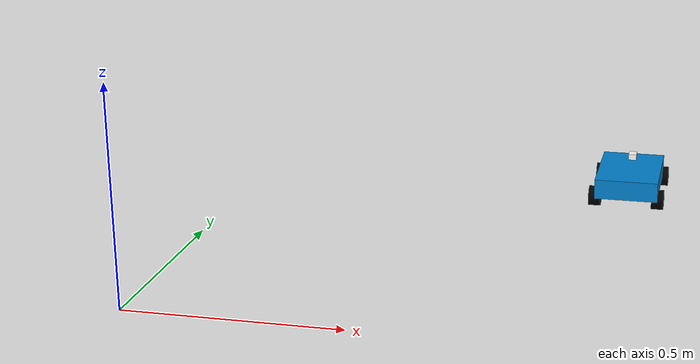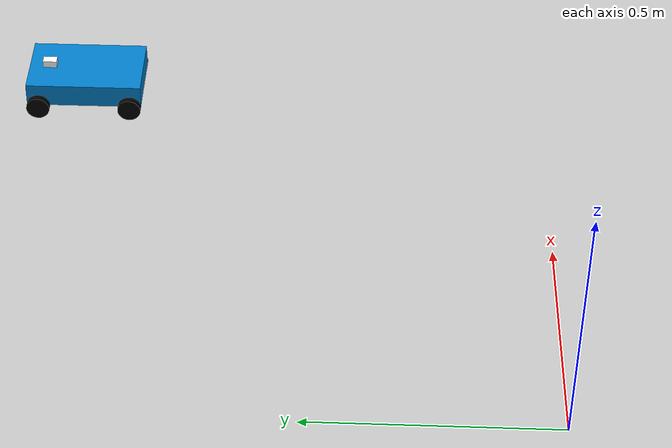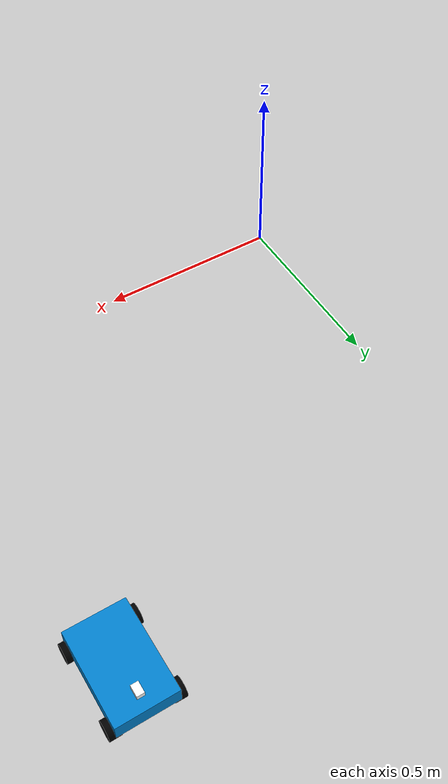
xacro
<?xml version="1.0"?>

<robot xmlns:xacro="http://www.ros.org/wiki/xacro"
    xmlns:sensor="http://playerstage.sourceforge.net/gazebo/xmlschema/#sensor"
        xmlns:controller="http://playerstage.sourceforge.net/gazebo/xmlschema/#controller"
        xmlns:interface="http://playerstage.sourceforge.net/gazebo/xmlschema/#interface"
    name="smartcar2_xacro">

    <xacro:property name="length_wheel" value="0.05" />
    <xacro:property name="radius_wheel" value="0.05" />
    <xacro:macro name="default_inertial" params="mass">
               <inertial>
                       <mass value="${mass}" />
                       <inertia ixx="1.0" ixy="0.0" ixz="0.0"
                                iyy="1.0" iyz="0.0"
                                izz="1.0" />
               </inertial>
    </xacro:macro>

    <link name="base_footprint2">
        <visual>
            <geometry>
                    <box size="0.001 0.001 0.001"/>
                </geometry>
            <origin rpy="0 0 0" xyz="0 0 0"/>
        </visual>
        <xacro:default_inertial mass="0.0001"/>
    </link>
    <joint name="base_footprint_joint2" type="fixed">
        <origin xyz="0 0 0" />
        <parent link="base_footprint2" />
        <child link="base_link2" />
    </joint>

    <link name="base_link2">
        <visual>
            <geometry>
                <box size="0.25 .16 .05"/>
            </geometry>
            <origin rpy="0 0 1.57075" xyz="1 1 0.05"/>
            <material name="blue">
                <color rgba="0 .5 .8 1"/>
            </material>
        </visual>
        <collision>
            <geometry>
                    <box size="0.2 .3 0.1"/>
            </geometry>
        </collision>
        <xacro:default_inertial mass="10"/>
    </link>

    <gazebo reference="base_link2">
        <material>Gazebo/Red</material>
    </gazebo>

    <link name="right_front_wheel2">
        <visual>
            <geometry>
                <cylinder length=".03" radius="0.025"/>
            </geometry>
            <material name="black">
                <color rgba="0 0 0 1"/>
            </material>
        </visual>
        <collision>
            <geometry>
                    <cylinder length=".03" radius="0.025"/>
            </geometry>
        </collision>
        <xacro:default_inertial mass="1"/>
    </link>

    <link name="right_back_wheel2">
        <visual>
        <geometry>
            <cylinder length=".03" radius="0.025"/>
        </geometry>
        <material name="black">
            <color rgba="0 0 0 1"/>
        </material>
        </visual>
        <collision>
            <geometry>
                    <cylinder length=".03" radius="0.025"/>
            </geometry>
        </collision>
        <xacro:default_inertial mass="1"/>
    </link>

    <link name="left_front_wheel2">
        <visual>
            <geometry>
                <cylinder length=".03" radius="0.025"/>
            </geometry>
            <material name="black">
                <color rgba="0 0 0 1"/>
            </material>
        </visual>
        <collision>
            <geometry>
                    <cylinder length=".03" radius="0.025"/>
            </geometry>
        </collision>
        <xacro:default_inertial mass="1"/>
    </link>

    <link name="left_back_wheel2">
        <visual>
            <geometry>
                <cylinder length=".03" radius="0.025"/>
            </geometry>
            <material name="black">
                <color rgba="0 0 0 1"/>
            </material>
        </visual>
        <collision>
            <geometry>
                    <cylinder length=".03" radius="0.025"/>
            </geometry>
        </collision>
        <xacro:default_inertial mass="1"/>
    </link>

    <link name="head2">
        <visual>
            <geometry>
                <box size=".02 .03 .03"/>
            </geometry>
            <material name="white">
                <color rgba="1 1 1 1"/>
            </material>
        </visual>
    </link>
    <gazebo reference="head2">
        <material>Gazebo/Yellow</material>
    </gazebo>

    <joint name="right_front_wheel_joint2" type="continuous">
        <axis xyz="0 0 1"/>
        <parent link="base_link2"/>
        <child link="right_front_wheel2"/>
        <origin rpy="0 1.57075 0" xyz="1.08 1.1 0.025"/>
        <limit effort="100" velocity="100"/>
        <joint_properties damping="0.0" friction="0.0"/>
    </joint>

    <joint name="right_back_wheel_joint2" type="continuous">
        <axis xyz="0 0 1"/>
        <parent link="base_link2"/>
        <child link="right_back_wheel2"/>
        <origin rpy="0 1.57075 0" xyz="1.08 0.9 0.025"/>
        <limit effort="100" velocity="100"/>
        <joint_properties damping="0.0" friction="0.0"/>
    </joint>

    <joint name="left_front_wheel_joint2" type="continuous">
        <axis xyz="0 0 1"/>
        <parent link="base_link2"/>
        <child link="left_front_wheel2"/>
        <origin rpy="0 1.57075 0" xyz="0.92 1.1 0.025"/>
        <limit effort="100" velocity="100"/>
        <joint_properties damping="0.0" friction="0.0"/>
    </joint>

    <joint name="left_back_wheel_joint2" type="continuous">
        <axis xyz="0 0 1"/>
        <parent link="base_link2"/>
        <child link="left_back_wheel2"/>
        <origin rpy="0 1.57075 0" xyz="0.92 0.9 0.025"/>
        <limit effort="100" velocity="100"/>
        <joint_properties damping="0.0" friction="0.0"/>
    </joint>

    <joint name="tobox2" type="fixed">
        <parent link="base_link2"/>
        <child link="head2"/>
        <origin xyz="1 1.08 0.075"/>
    </joint>

  <!-- Drive controller -->
<gazebo>
  <plugin name="skid_steer_drive_controller" filename="libgazebo_ros_skid_steer_drive.so">
    <updateRate>100.0</updateRate>
    <robotNamespace>/</robotNamespace>
    <leftFrontJoint>right_front_wheel_joint</leftFrontJoint>
    <rightFrontJoint>right_back_wheel_joint</rightFrontJoint>
    <leftRearJoint>left_front_wheel_joint</leftRearJoint>
    <rightRearJoint>left_back_wheel_joint</rightRearJoint>
    <wheelSeparation>4</wheelSeparation>
    <wheelDiameter>0.05</wheelDiameter>
    <robotBaseFrame>base_link</robotBaseFrame>
    <torque>1</torque>
    <commandTopic>cmd_vel</commandTopic>
    <broadcastTF>1</broadcastTF>
    <odometryTopic>odom</odometryTopic>
    <odometryFrame>odom</odometryFrame>
    <odometrySource>world</odometrySource>
    <publishOdomTF>true</publishOdomTF>
    <topicName>cmd_vel</topicName>
    <robotBaseFrame>base_footprint</robotBaseFrame>
  </plugin>
</gazebo>

<!-- ros_control plugin -->
  <gazebo>
    <plugin name="gazebo_ros_control" filename="libgazebo_ros_control.so">
      <robotNamespace>/robot2</robotNamespace>
      <legacyModeNS>true</legacyModeNS>
    </plugin>
  </gazebo>

</robot>
